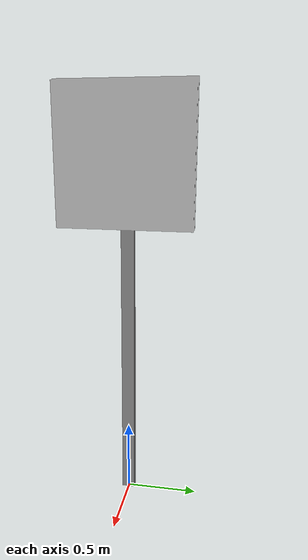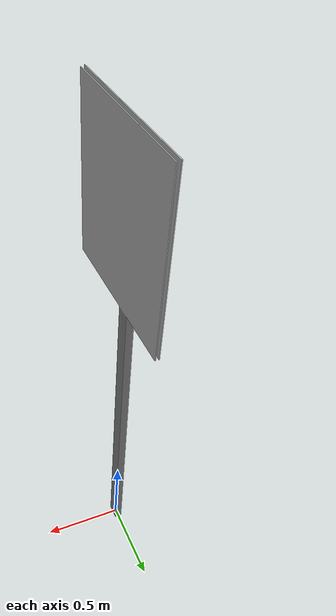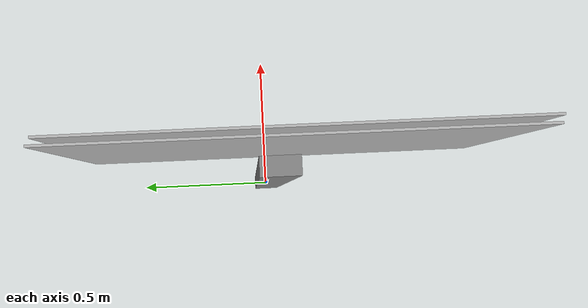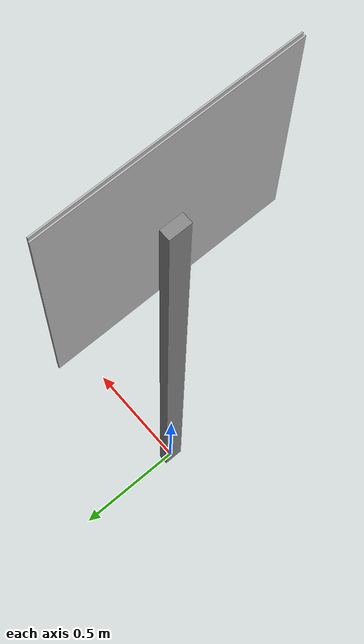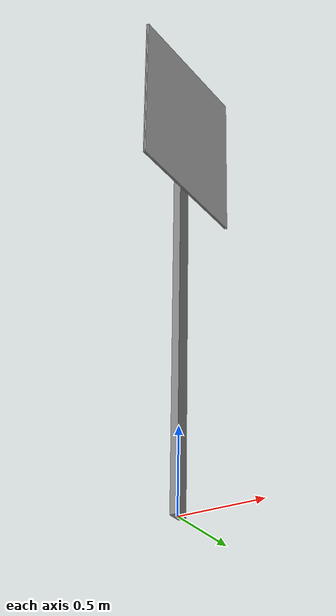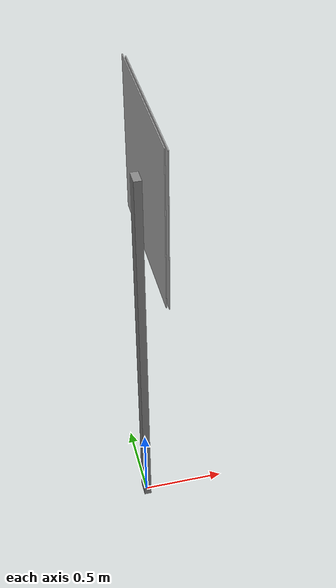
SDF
<?xml version="1.0" ?>
<sdf version="1.5">
  <model name="disabled_parking">
    <link name="link">
      <collision name="collision">
        <geometry>
          <mesh>
            <scale>1 1 1</scale>
            <uri>model://disabled_parking/meshes/disabled_parking.dae</uri>
          </mesh>
        </geometry>
      </collision>
      <visual name="visual">
        <geometry>
          <mesh>
            <scale>1 1 1</scale>
            <uri>model://disabled_parking/meshes/disabled_parking.dae</uri>
          </mesh>
        </geometry>
      </visual>
    </link>
  </model>
</sdf>
